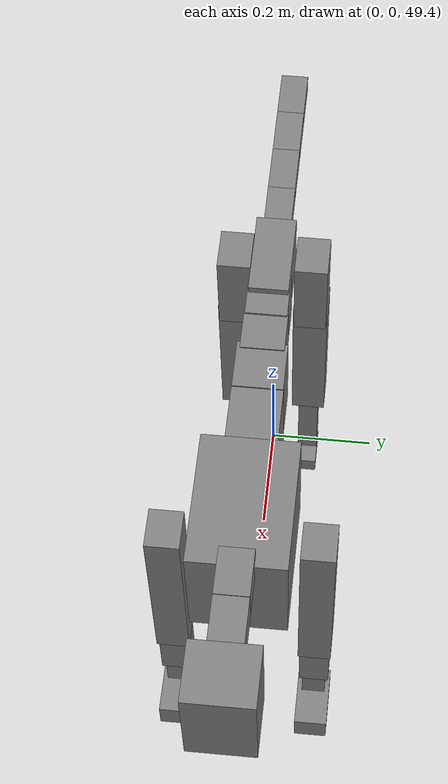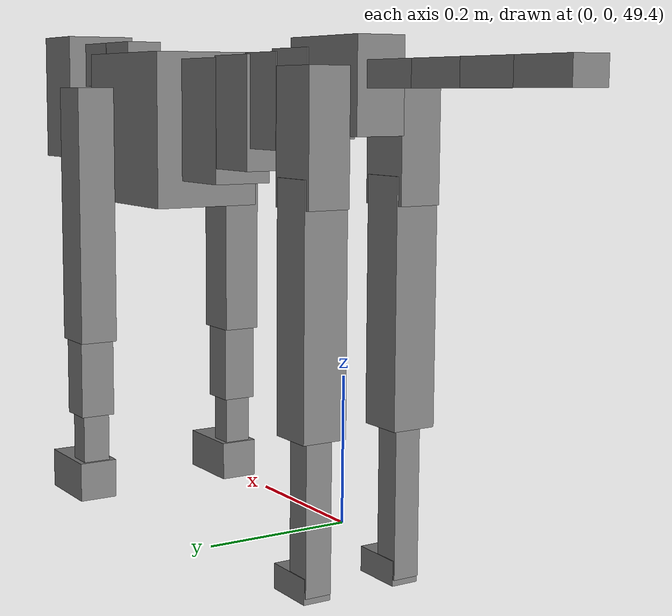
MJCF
<mujoco model="dog">

    <default>
        <joint armature="0.02" stiffness="1" damping="0.2" limited="true"/>
        <geom condim="3" friction="1 0.05 0.05" margin="0.01"/>
        <motor ctrllimited="true" ctrlrange="-1.0 1.0" forcelimited="true" gear="50"/>
    </default>

    <compiler inertiafromgeom="true" angle="radian"/>

    <option timestep="0.016" iterations="50" tolerance="1e-10" solver="Newton" jacobian="dense" cone="pyramidal"/>

    <size nconmax="20000" njmax="60000" nstack="5000000"/>
    <visual>
        <map force="0.1" zfar="30"/>
        <rgba haze="0.15 0.25 0.35 1"/>
        <quality shadowsize="2048"/>
        <global offwidth="800" offheight="800"/>
    </visual>

    <asset>
        <texture type="skybox" builtin="gradient" rgb1="0.3 0.5 0.7" rgb2="0 0 0" width="512" height="512"/>
        <texture name="texplane" type="2d" builtin="checker" rgb1=".2 .3 .4" rgb2=".1 0.15 0.2" width="512" height="512"
                 mark="cross" markrgb=".8 .8 .8"/>
        <texture name="texgeom" type="cube" builtin="flat" mark="cross" width="127" height="1278" rgb1="0.8 0.6 0.4"
                 rgb2="0.8 0.6 0.4" markrgb="1 1 1" random="0.01"/>

        <material name="matplane" reflectance="0.3" texture="texplane" texrepeat="1 1" texuniform="true"/>
        <material name="matgeom" texture="texgeom" texuniform="true" rgba="0.8 0.6 .4 1"/>
    </asset>

    <worldbody>
        <geom name="floor" pos="0 0 0" size="0 0 .25" type="plane" material="matplane" condim="3"/>

        <light directional="false" diffuse=".2 .2 .2" specular="0 0 0" pos="0 0 5" dir="0 0 -1" castshadow="false"/>
        <light mode="targetbodycom" target="torso" directional="false" diffuse=".8 .8 .8" specular="0.3 0.3 0.3"
               pos="0 0 4.0" dir="0 0 -1"/>

        <body name="root" pos="0 0 50">
            <freejoint name="root_1"/>
            <geom type="box" pos="0 0 -0.02" size="0.0774  0.0358  0.063" density="2030"/>

            <body name="spine1" pos="0.054 0 0">
                <joint name="spine1_y" axis="0 1 0" range="0 0.7" limited="true"/>
                <geom type="box" pos="0.02375 0 -0.03" size="0.04375  0.0375  0.05985" density="2030"/>

                <body name="spine2" pos="0.0612 0 0">
                    <joint name="spine2_y" axis="0 1 0" range="-0.15 0.15" limited="true"/>
                    <geom type="box" pos="0.03555  0  -0.04" size="0.04055  0.039  0.06615" density="2030"/>

                    <body name="spine3" pos="0.0730 0 0">
                        <joint name="spine3_y" axis="0 1 0" range="-0.15 0.15" limited="true"/>
                        <geom type="box" pos="0.03555  0  -0.057" size="0.04555  0.0445  0.081" density="2030"/>

                        <body name="spine4" pos="0.0780 0 0">
                            <joint name="spine4_y" axis="0 1 0" range="-0.15 0.15" limited="true"/>
                            <geom type="box" pos="0.05265  0  -0.07" size="0.05265  0.045  0.09135" density="2030"/>

                            <body name="torso" pos="0.1082 0 0">
                                <joint name="torso_y" axis="0 1 0" range="-0.15 0.15" limited="true"/>
                                <geom type="box" pos="0.11925  0  -0.085" size="0.11925  0.085  0.11745"
                                      density="2030"/>

                                <body name="neck1" pos="0.2160  0   0.0180">
                                    <joint name="neck1_y" axis="0 1 0" range="-1.2  -1" limited="true"/>
                                    <geom type="box" pos="0.0423  0  0" size="0.0423  0.03  0.036" density="2325"/>

                                    <body name="neck2" pos="0.0853  0  0">
                                        <joint name="neck2_y" axis="0 1 0" range="0.1  0" limited="true"/>
                                        <geom type="box" pos="0.0423  0  0" size="0.0423  0.03  0.036" density="2325"/>

                                        <body name="head" pos="0.0853  0  0">
                                            <joint name="head_y" axis="0 1 0" range="-0.3  -0.2" limited="true"/>
                                            <geom type="box" pos="0.0531  0  -0.055" size="0.0531  0.06  0.1044"
                                                  density="4030"/>

                                        </body>
                                    </body>
                                </body>

                                <body name="front_shoulder" pos="0.156  0   -0.0480">
                                    <joint name="front_shoulder_y" axis="0 1 0" range="-1 1.5" limited="true"/>
                                    <geom type="box" pos="0 0.13 -0.1731" size="0.0350  0.0299  0.1998" density="1158"/>
                                    <geom type="box" pos="0 -0.13 -0.1731" size="0.0350  0.0299  0.1998"
                                          density="1158"/>

                                    <body name="front_elbow" pos="0  0  -0.3463">
                                        <joint name="front_elbow_y" axis="0 1 0" range="-2 0" limited="true"/>
                                        <geom type="box" pos="0 0.13 -0.0733" size="0.0268  0.0274  0.0733"
                                              density="1081"/>
                                        <geom type="box" pos="0 -0.13 -0.0733" size="0.0268  0.0274  0.0733"
                                              density="1081"/>

                                        <body name="front_wrist" pos="0  0  -0.1466">
                                            <joint name="front_wrist_y" axis="0 1 0" range="-0.2 0" limited="true"/>
                                            <geom type="box" pos="0 0.13 -0.0451" size="0.0195  0.0216  0.0583"
                                                  density="1664"/>
                                            <geom type="box" pos="0 -0.13 -0.0451" size="0.0195  0.0216  0.0583"
                                                  density="1664"/>

                                            <body name="front_finger_end" pos="0  0  -0.0902">
                                                <joint name="front_finger_y" axis="0 1 0" range="-0.4 1"
                                                       limited="true"/>
                                                <geom type="box" pos="0.0304  0.13  -0.0155"
                                                      size="0.0557  0.0304  0.0305" density="1515"/>
                                                <geom type="box" pos="0.0304  -0.13  -0.0155"
                                                      size="0.0557  0.0304  0.0305" density="1515"/>

                                            </body>

                                        </body>
                                    </body>
                                </body>

                            </body>
                        </body>
                    </body>
                </body>
            </body>

            <body name="back_hip" pos="-0.03 0 -0.018">
                <joint name="back_hip_y" axis="0 1 0" range="-1.5 0.3" limited="true"/>
                <geom type="box" pos="0 0.07 -0.0662" size="0.0384  0.0301  0.0890" density="1154"/>
                <geom type="box" pos="0 -0.07 -0.0662" size="0.0384  0.0301  0.0890" density="1154"/>

                <body name="back_knee" pos="0  0  -0.1324">
                    <joint name="back_knee_y" axis="0 1 0" range="0 2.8" limited="true"/>
                    <geom type="box" pos="0 0.07 -0.1512" size="0.0323  0.0319  0.1668" density="1227"/>
                    <geom type="box" pos="0 -0.07 -0.1512" size="0.0323  0.0319  0.1668" density="1227"/>

                    <body name="back_ankle" pos="0  0  -0.3025">
                        <joint name="back_ankle_y" axis="0 1 0" range="-2.2 0" limited="true"/>
                        <geom type="box" pos="0 0.07 -0.1054" size="0.0192  0.0192  0.1166" density="1284"/>
                        <geom type="box" pos="0 -0.07 -0.1054" size="0.0192  0.0192  0.1166" density="1284"/>

                        <body name="back_toe_end" pos="0  0  -0.2107">
                            <joint name="back_toe_y" axis="0 1 0" range="-0.4 1" limited="true"/>
                            <geom type="box" pos="0.0201  0.07  -0.0025" size="0.0369  0.0201  0.0175" density="1515"/>
                            <geom type="box" pos="0.0201  -0.07  -0.0025" size="0.0369  0.0201  0.0175" density="1515"/>

                        </body>
                    </body>
                </body>
            </body>

            <body name="tail1" pos="-0.074 0 -0.006">
                <joint name="tail1_y" axis="0 1 0" range="-0.2 0.2" limited="true"/>
                <geom type="box" pos="-0.0536  0  0" size="0.045  0.025  0.0175" density="1587"/>

                <body name="tail2" pos="-0.09 0 0">
                    <joint name="tail2_y" axis="0 1 0" range="-0.2 0.2" limited="true"/>
                    <geom type="box" pos="-0.0536  0  0" size="0.045  0.025  0.0175" density="1587"/>

                    <body name="tail3" pos="-0.09 0 0">
                        <joint name="tail3_y" axis="0 1 0" range="-0.2 0.2" limited="true"/>
                        <geom type="box" pos="-0.0536  0  0" size="0.045  0.025  0.0175" density="1587"/>

                        <body name="tail4" pos="-0.09 0 0">
                            <joint name="tail4_y" axis="0 1 0" range="-0.2 0.2" limited="true"/>
                            <geom type="box" pos="-0.0536  0  0" size="0.045  0.025  0.0175" density="1587"/>

                        </body>
                    </body>
                </body>
            </body>
        </body>
    </worldbody>

    <actuator>
        <motor joint="spine1_y" forcerange="-150 150     "/>
        <motor joint="spine2_y" forcerange="-150 150     "/>
        <motor joint="spine3_y" forcerange="-150 150     "/>
        <motor joint="spine4_y" forcerange="-150 150     "/>
        <motor joint="torso_y" forcerange="-150 150     "/>
        <motor joint="neck1_y" forcerange="-100 100       "/>
        <motor joint="neck2_y" forcerange="-100 100       "/>
        <motor joint="head_y" forcerange="-150 150       "/>
        <motor joint="front_shoulder_y" forcerange="-151.56 148.04"/>
        <motor joint="front_elbow_y" forcerange="-108.09 191.33"/>
        <motor joint="front_wrist_y" forcerange="-83.01 90.07"/>
        <motor joint="front_finger_y" forcerange="-80.94 41.03"/>
        <motor joint="back_hip_y" forcerange="-394.32 207.68"/>
        <motor joint="back_knee_y" forcerange="-289.36 374.02"/>
        <motor joint="back_angle_y" forcerange="-72.94 133.76"/>
        <motor joint="back_toe_y" forcerange="-34.32 46.73"/>
        <motor joint="tail1_y" forcerange="-50 50     "/>
        <motor joint="tail2_y" forcerange="-50 50     "/>
        <motor joint="tail3_y" forcerange="-50 50     "/>
        <motor joint="tail4_y" forcerange="-50 50     "/>
    </actuator>
</mujoco>
